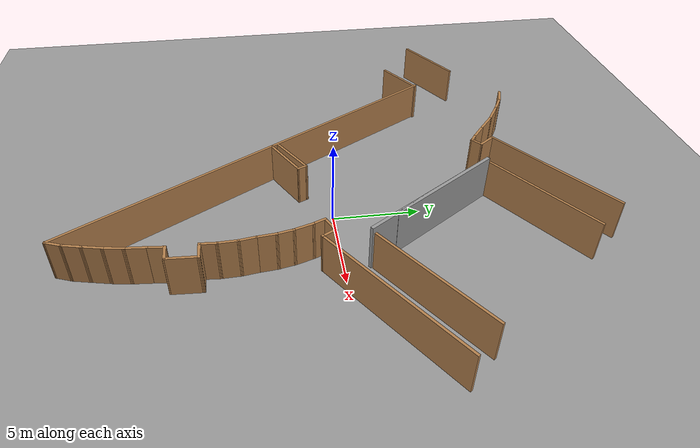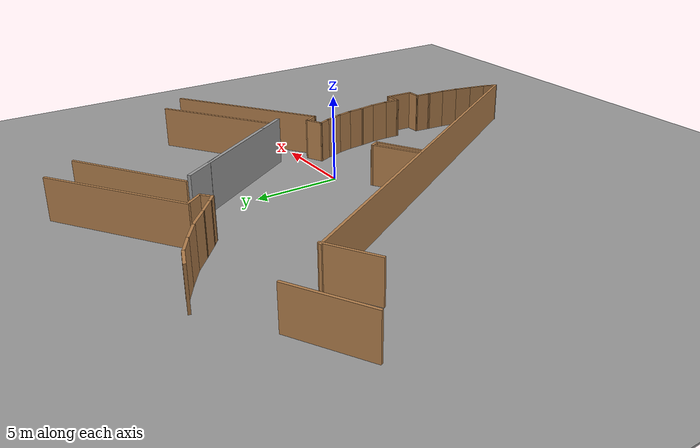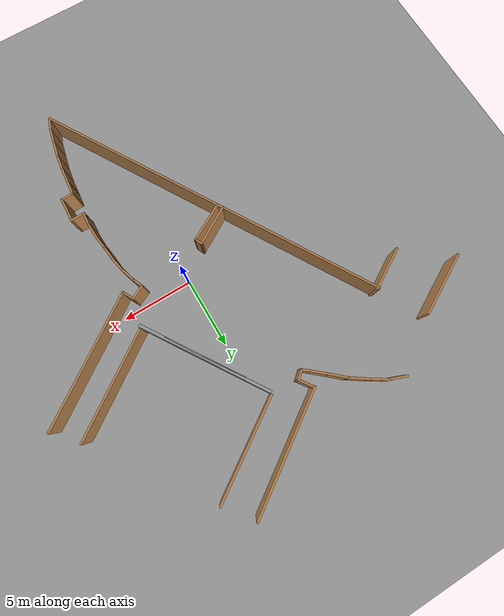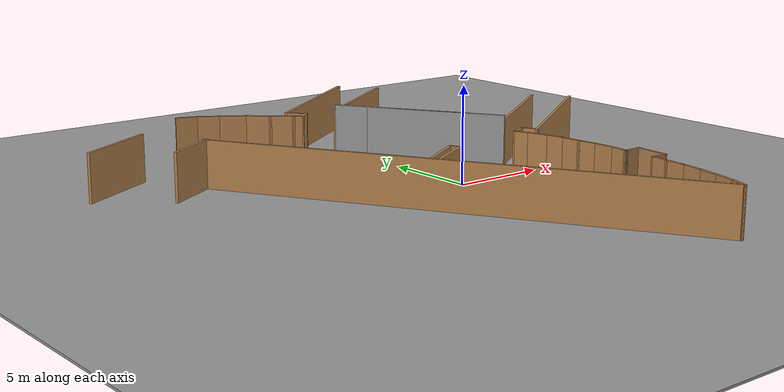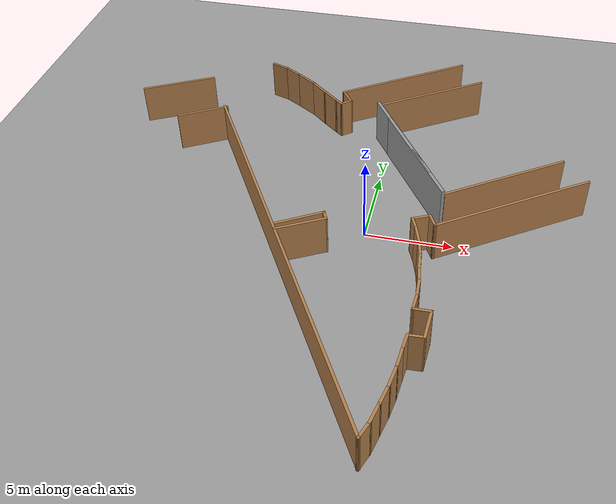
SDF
<sdf version="1.6">
 <world name="default">
  <light name="sun" type="directional">
   <pose>0 0 10 0 -0 0</pose>
   <diffuse>0.8 0.8 0.8 1</diffuse>
   <specular>0.1 0.1 0.1 1</specular>
   <attenuation>
    <range>1000</range>
    <constant>0.9</constant>
    <linear>0.01</linear>
    <quadratic>0.001</quadratic>
   </attenuation>
   <direction>-0.5 0.5 -1</direction>
  </light>
  <model name="ground_plane">
   <static>1</static>
   <link name="link">
    <collision name="collision">
     <geometry><plane><normal>0 0 1</normal><size>100 100</size></plane></geometry>
     <surface><friction><ode><mu>100</mu><mu2>50</mu2></ode></friction></surface>
    </collision>
    <visual name="visual">
     <cast_shadows>0</cast_shadows>
     <geometry><plane><normal>0 0 1</normal><size>100 100</size></plane></geometry>
     <material>
      <script><uri>file://media/materials/scripts/gazebo.material</uri><name>Gazebo/Grey</name></script>
     </material>
    </visual>
   </link>
  </model>
  <gravity>0 0 -9.8</gravity>
  <magnetic_field>6e-06 2.3e-05 -4.2e-05</magnetic_field>
  <atmosphere type="adiabatic"/>
  <physics name="default_physics" default="0" type="ode">
   <max_step_size>0.001</max_step_size>
   <real_time_factor>1</real_time_factor>
   <real_time_update_rate>1000</real_time_update_rate>
  </physics>
  <scene><ambient>0.4 0.4 0.4 1</ambient><background>0.7 0.7 0.7 1</background><shadows>1</shadows></scene>
  <spherical_coordinates>
   <surface_model>EARTH_WGS84</surface_model>
   <latitude_deg>0</latitude_deg>
   <longitude_deg>0</longitude_deg>
   <elevation>0</elevation>
   <heading_deg>0</heading_deg>
  </spherical_coordinates>
  <model name="lobby">
   <pose>-2.05254 0.166567 0 0 -0 0</pose>
   <link name="Wall_0">
    <collision name="Wall_0_Collision">
     <geometry><box><size>25.6992 0.15 2.5</size></box></geometry>
     <pose>0 0 1.25 0 -0 0</pose>
    </collision>
    <visual name="Wall_0_Visual">
     <pose>0 0 1.25 0 -0 0</pose>
     <geometry><box><size>25.6992 0.15 2.5</size></box></geometry>
     <material>
      <script><uri>file://media/materials/scripts/gazebo.material</uri><name>Gazebo/Wood</name></script>
      <ambient>0.309804 0.309804 0.309804 1</ambient>
     </material>
    </visual>
    <pose>-1.82314 -3.91274 0 0 0 -1.03666</pose>
   </link>
   <link name="Wall_10">
    <collision name="Wall_10_Collision">
     <geometry><box><size>1.05209 0.15 2.5</size></box></geometry>
     <pose>0 0 1.25 0 -0 0</pose>
    </collision>
    <visual name="Wall_10_Visual">
     <pose>0 0 1.25 0 -0 0</pose>
     <geometry><box><size>1.05209 0.15 2.5</size></box></geometry>
     <material>
      <script><uri>file://media/materials/scripts/gazebo.material</uri><name>Gazebo/Wood</name></script>
      <ambient>1 1 1 1</ambient>
     </material>
    </visual>
    <pose>6.25907 -7.36735 0 0 -0 3.14159</pose>
   </link>
   <link name="Wall_11">
    <collision name="Wall_11_Collision">
     <geometry><box><size>1.00886 0.15 2.5</size></box></geometry>
     <pose>0 0 1.25 0 -0 0</pose>
    </collision>
    <visual name="Wall_11_Visual">
     <pose>0 0 1.25 0 -0 0</pose>
     <geometry><box><size>1.00886 0.15 2.5</size></box></geometry>
     <material>
      <script><uri>file://media/materials/scripts/gazebo.material</uri><name>Gazebo/Wood</name></script>
      <ambient>1 1 1 1</ambient>
     </material>
    </visual>
    <pose>5.83894 -6.93903 0 0 -0 1.49873</pose>
   </link>
   <link name="Wall_12">
    <collision name="Wall_12_Collision">
     <geometry><box><size>1.20804 0.15 2.5</size></box></geometry>
     <pose>0 0 1.25 0 -0 0</pose>
    </collision>
    <visual name="Wall_12_Visual">
     <pose>0 0 1.25 0 -0 0</pose>
     <geometry><box><size>1.20804 0.15 2.5</size></box></geometry>
     <material>
      <script><uri>file://media/materials/scripts/gazebo.material</uri><name>Gazebo/Wood</name></script>
      <ambient>1 1 1 1</ambient>
     </material>
    </visual>
    <pose>5.85117 -5.98203 0 0 -0 1.60614</pose>
   </link>
   <link name="Wall_13">
    <collision name="Wall_13_Collision">
     <geometry><box><size>1.09089 0.15 2.5</size></box></geometry>
     <pose>0 0 1.25 0 -0 0</pose>
    </collision>
    <visual name="Wall_13_Visual">
     <pose>0 0 1.25 0 -0 0</pose>
     <geometry><box><size>1.09089 0.15 2.5</size></box></geometry>
     <material>
      <script><uri>file://media/materials/scripts/gazebo.material</uri><name>Gazebo/Wood</name></script>
      <ambient>1 1 1 1</ambient>
     </material>
    </visual>
    <pose>5.76269 -4.9881 0 0 -0 1.71969</pose>
   </link>
   <link name="Wall_14">
    <collision name="Wall_14_Collision">
     <geometry><box><size>1.13142 0.15 2.5</size></box></geometry>
     <pose>0 0 1.25 0 -0 0</pose>
    </collision>
    <visual name="Wall_14_Visual">
     <pose>0 0 1.25 0 -0 0</pose>
     <geometry><box><size>1.13142 0.15 2.5</size></box></geometry>
     <material>
      <script><uri>file://media/materials/scripts/gazebo.material</uri><name>Gazebo/Wood</name></script>
      <ambient>1 1 1 1</ambient>
     </material>
    </visual>
    <pose>5.64638 -4.03436 0 0 -0 1.66575</pose>
   </link>
   <link name="Wall_15">
    <collision name="Wall_15_Collision">
     <geometry><box><size>1.05333 0.15 2.5</size></box></geometry>
     <pose>0 0 1.25 0 -0 0</pose>
    </collision>
    <visual name="Wall_15_Visual">
     <pose>0 0 1.25 0 -0 0</pose>
     <geometry><box><size>1.05333 0.15 2.5</size></box></geometry>
     <material>
      <script><uri>file://media/materials/scripts/gazebo.material</uri><name>Gazebo/Wood</name></script>
      <ambient>1 1 1 1</ambient>
     </material>
    </visual>
    <pose>5.50681 -3.10388 0 0 -0 1.77829</pose>
   </link>
   <link name="Wall_16">
    <collision name="Wall_16_Collision">
     <geometry><box><size>1.22409 0.15 2.5</size></box></geometry>
     <pose>0 0 1.25 0 -0 0</pose>
    </collision>
    <visual name="Wall_16_Visual">
     <pose>0 0 1.25 0 -0 0</pose>
     <geometry><box><size>1.22409 0.15 2.5</size></box></geometry>
     <material>
      <script><uri>file://media/materials/scripts/gazebo.material</uri><name>Gazebo/Wood</name></script>
      <ambient>1 1 1 1</ambient>
     </material>
    </visual>
    <pose>5.25093 -2.15014 0 0 -0 1.87885</pose>
   </link>
   <link name="Wall_17">
    <collision name="Wall_17_Collision">
     <geometry><box><size>0.858631 0.15 2.5</size></box></geometry>
     <pose>0 0 1.25 0 -0 0</pose>
    </collision>
    <visual name="Wall_17_Visual">
     <pose>0 0 1.25 0 -0 0</pose>
     <geometry><box><size>0.858631 0.15 2.5</size></box></geometry>
     <material>
      <script><uri>file://media/materials/scripts/gazebo.material</uri><name>Gazebo/Wood</name></script>
      <ambient>1 1 1 1</ambient>
     </material>
    </visual>
    <pose>4.94852 -1.31271 0 0 -0 1.97569</pose>
   </link>
   <link name="Wall_18">
    <collision name="Wall_18_Collision">
     <geometry><box><size>1.12811 0.15 2.5</size></box></geometry>
     <pose>0 0 1.25 0 -0 0</pose>
    </collision>
    <visual name="Wall_18_Visual">
     <pose>0 0 1.25 0 -0 0</pose>
     <geometry><box><size>1.12811 0.15 2.5</size></box></geometry>
     <material>
      <script><uri>file://media/materials/scripts/gazebo.material</uri><name>Gazebo/Wood</name></script>
      <ambient>1 1 1 1</ambient>
     </material>
    </visual>
    <pose>5.25093 -0.777689 0 0 -0 0.442374</pose>
   </link>
   <link name="Wall_19">
    <collision name="Wall_19_Collision">
     <geometry><box><size>0.940907 0.15 2.5</size></box></geometry>
     <pose>0 0 1.25 0 -0 0</pose>
    </collision>
    <visual name="Wall_19_Visual">
     <pose>0 0 1.25 0 -0 0</pose>
     <geometry><box><size>0.940907 0.15 2.5</size></box></geometry>
     <material>
      <script><uri>file://media/materials/scripts/gazebo.material</uri><name>Gazebo/Wood</name></script>
      <ambient>1 1 1 1</ambient>
     </material>
    </visual>
    <pose>5.879 -0.91726 0 0 0 -1.08084</pose>
   </link>
   <link name="Wall_2">
    <collision name="Wall_2_Collision">
     <geometry><box><size>1.04138 0.15 2.5</size></box></geometry>
     <pose>0 0 1.25 0 -0 0</pose>
    </collision>
    <visual name="Wall_2_Visual">
     <pose>0 0 1.25 0 -0 0</pose>
     <geometry><box><size>1.04138 0.15 2.5</size></box></geometry>
     <material>
      <script><uri>file://media/materials/scripts/gazebo.material</uri><name>Gazebo/Wood</name></script>
      <ambient>1 1 1 1</ambient>
     </material>
    </visual>
    <pose>4.83943 -14.4916 0 0 -0 1.20596</pose>
   </link>
   <link name="Wall_21">
    <collision name="Wall_21_Collision">
     <geometry><box><size>9.71451 0.15 2.5</size></box></geometry>
     <pose>0 0 1.25 0 -0 0</pose>
    </collision>
    <visual name="Wall_21_Visual">
     <pose>0 0 1.25 0 -0 0</pose>
     <geometry><box><size>9.71451 0.15 2.5</size></box></geometry>
     <material>
      <script><uri>file://media/materials/scripts/gazebo.material</uri><name>Gazebo/Wood</name></script>
      <ambient>1 1 1 1</ambient>
     </material>
    </visual>
    <pose>10.0317 1.4051 0 0 -0 0.592678</pose>
   </link>
   <link name="Wall_23">
    <collision name="Wall_23_Collision">
     <geometry><box><size>7.7244 0.15 2.5</size></box></geometry>
     <pose>0 0 1.25 0 -0 0</pose>
    </collision>
    <visual name="Wall_23_Visual">
     <pose>0 0 1.25 0 -0 0</pose>
     <geometry><box><size>7.7244 0.15 2.5</size></box></geometry>
     <material>
      <script><uri>file://media/materials/scripts/gazebo.material</uri><name>Gazebo/Wood</name></script>
      <ambient>1 1 1 1</ambient>
     </material>
    </visual>
    <pose>9.41575 3.54137 0 0 -0 0.593113</pose>
   </link>
   <link name="Wall_25">
    <collision name="Wall_25_Collision">
     <geometry><box><size>1.22723 0.15 2.5</size></box></geometry>
     <pose>0 0 1.25 0 -0 0</pose>
    </collision>
    <visual name="Wall_25_Visual">
     <pose>0 0 1.25 0 -0 0</pose>
     <geometry><box><size>1.22723 0.15 2.5</size></box></geometry>
     <material>
      <script><uri>file://media/materials/scripts/gazebo.material</uri><name>Gazebo/Wood</name></script>
      <ambient>1 1 1 1</ambient>
     </material>
    </visual>
    <pose>-6.13059 12.387 0 0 0 -0.35299</pose>
   </link>
   <link name="Wall_26">
    <collision name="Wall_26_Collision">
     <geometry><box><size>1.30886 0.15 2.5</size></box></geometry>
     <pose>0 0 1.25 0 -0 0</pose>
    </collision>
    <visual name="Wall_26_Visual">
     <pose>0 0 1.25 0 -0 0</pose>
     <geometry><box><size>1.30886 0.15 2.5</size></box></geometry>
     <material>
      <script><uri>file://media/materials/scripts/gazebo.material</uri><name>Gazebo/Wood</name></script>
      <ambient>1 1 1 1</ambient>
     </material>
    </visual>
    <pose>-5.13308 11.8949 0 0 0 -0.556166</pose>
   </link>
   <link name="Wall_27">
    <collision name="Wall_27_Collision">
     <geometry><box><size>1.56657 0.15 2.5</size></box></geometry>
     <pose>0 0 1.25 0 -0 0</pose>
    </collision>
    <visual name="Wall_27_Visual">
     <pose>0 0 1.25 0 -0 0</pose>
     <geometry><box><size>1.56657 0.15 2.5</size></box></geometry>
     <material>
      <script><uri>file://media/materials/scripts/gazebo.material</uri><name>Gazebo/Wood</name></script>
      <ambient>1 1 1 1</ambient>
     </material>
    </visual>
    <pose>-4.05577 11.19 0 0 0 -0.598419</pose>
   </link>
   <link name="Wall_28">
    <collision name="Wall_28_Collision">
     <geometry><box><size>1.43124 0.15 2.5</size></box></geometry>
     <pose>0 0 1.25 0 -0 0</pose>
    </collision>
    <visual name="Wall_28_Visual">
     <pose>0 0 1.25 0 -0 0</pose>
     <geometry><box><size>1.43124 0.15 2.5</size></box></geometry>
     <material>
      <script><uri>file://media/materials/scripts/gazebo.material</uri><name>Gazebo/Wood</name></script>
      <ambient>1 1 1 1</ambient>
     </material>
    </visual>
    <pose>-2.99177 10.3654 0 0 0 -0.726642</pose>
   </link>
   <link name="Wall_29">
    <collision name="Wall_29_Collision">
     <geometry><box><size>1.37621 0.15 2.5</size></box></geometry>
     <pose>0 0 1.25 0 -0 0</pose>
    </collision>
    <visual name="Wall_29_Visual">
     <pose>0 0 1.25 0 -0 0</pose>
     <geometry><box><size>1.37621 0.15 2.5</size></box></geometry>
     <material>
      <script><uri>file://media/materials/scripts/gazebo.material</uri><name>Gazebo/Wood</name></script>
      <ambient>1 1 1 1</ambient>
     </material>
    </visual>
    <pose>-2.04746 9.54081 0 0 0 -0.708626</pose>
   </link>
   <link name="Wall_3">
    <collision name="Wall_3_Collision">
     <geometry><box><size>1.17116 0.15 2.5</size></box></geometry>
     <pose>0 0 1.25 0 -0 0</pose>
    </collision>
    <visual name="Wall_3_Visual">
     <pose>0 0 1.25 0 -0 0</pose>
     <geometry><box><size>1.17116 0.15 2.5</size></box></geometry>
     <material>
      <script><uri>file://media/materials/scripts/gazebo.material</uri><name>Gazebo/Wood</name></script>
      <ambient>1 1 1 1</ambient>
     </material>
    </visual>
    <pose>5.1141 -13.5779 0 0 -0 1.3423</pose>
   </link>
   <link name="Wall_30">
    <collision name="Wall_30_Collision">
     <geometry><box><size>0.623603 0.15 2.5</size></box></geometry>
     <pose>0 0 1.25 0 -0 0</pose>
    </collision>
    <visual name="Wall_30_Visual">
     <pose>0 0 1.25 0 -0 0</pose>
     <geometry><box><size>0.623603 0.15 2.5</size></box></geometry>
     <material>
      <script><uri>file://media/materials/scripts/gazebo.material</uri><name>Gazebo/Wood</name></script>
      <ambient>1 1 1 1</ambient>
     </material>
    </visual>
    <pose>-1.39576 8.9955 0 0 0 -0.665969</pose>
   </link>
   <link name="Wall_31">
    <collision name="Wall_31_Collision">
     <geometry><box><size>0.810735 0.15 2.5</size></box></geometry>
     <pose>0 0 1.25 0 -0 0</pose>
    </collision>
    <visual name="Wall_31_Visual">
     <pose>0 0 1.25 0 -0 0</pose>
     <geometry><box><size>0.810735 0.15 2.5</size></box></geometry>
     <material>
      <script><uri>file://media/materials/scripts/gazebo.material</uri><name>Gazebo/Wood</name></script>
      <ambient>1 1 1 1</ambient>
     </material>
    </visual>
    <pose>-0.956852 9.062 0 0 -0 0.699893</pose>
   </link>
   <link name="Wall_32">
    <collision name="Wall_32_Collision">
     <geometry><box><size>1.12409 0.15 2.5</size></box></geometry>
     <pose>0 0 1.25 0 -0 0</pose>
    </collision>
    <visual name="Wall_32_Visual">
     <pose>0 0 1.25 0 -0 0</pose>
     <geometry><box><size>1.12409 0.15 2.5</size></box></geometry>
     <material>
      <script><uri>file://media/materials/scripts/gazebo.material</uri><name>Gazebo/Wood</name></script>
      <ambient>1 1 1 1</ambient>
     </material>
    </visual>
    <pose>-0.983452 9.6738 0 0 -0 2.18152</pose>
   </link>
   <link name="Wall_34">
    <collision name="Wall_34_Collision">
     <geometry><box><size>7.20846 0.15 2.5</size></box></geometry>
     <pose>0 0 1.25 0 -0 0</pose>
    </collision>
    <visual name="Wall_34_Visual">
     <pose>0 0 1.25 0 -0 0</pose>
     <geometry><box><size>7.20846 0.15 2.5</size></box></geometry>
     <material>
      <script><uri>file://media/materials/scripts/gazebo.material</uri><name>Gazebo/Wood</name></script>
      <ambient>1 1 1 1</ambient>
     </material>
    </visual>
    <pose>4.16693 11.1149 0 0 -0 0.578862</pose>
   </link>
   <link name="Wall_36">
    <collision name="Wall_36_Collision">
     <geometry><box><size>8.6277 0.15 2.5</size></box></geometry>
     <pose>0 0 1.25 0 -0 0</pose>
    </collision>
    <visual name="Wall_36_Visual">
     <pose>0 0 1.25 0 -0 0</pose>
     <geometry><box><size>8.6277 0.15 2.5</size></box></geometry>
     <material>
      <script><uri>file://media/materials/scripts/gazebo.material</uri><name>Gazebo/Wood</name></script>
      <ambient>1 1 1 1</ambient>
     </material>
    </visual>
    <pose>2.16641 12.5338 0 0 -0 0.594091</pose>
   </link>
   <link name="Wall_38">
    <collision name="Wall_38_Collision">
     <geometry><box><size>3.17405 0.15 2.5</size></box></geometry>
     <pose>0 0 1.25 0 -0 0</pose>
    </collision>
    <visual name="Wall_38_Visual">
     <pose>0 0 1.25 0 -0 0</pose>
     <geometry><box><size>3.17405 0.15 2.5</size></box></geometry>
     <material>
      <script><uri>file://media/materials/scripts/gazebo.material</uri><name>Gazebo/Wood</name></script>
      <ambient>1 1 1 1</ambient>
     </material>
    </visual>
    <pose>-9.48783 6.27636 0 0 0 -2.60909</pose>
   </link>
   <link name="Wall_4">
    <collision name="Wall_4_Collision">
     <geometry><box><size>1.21627 0.15 2.5</size></box></geometry>
     <pose>0 0 1.25 0 -0 0</pose>
    </collision>
    <visual name="Wall_4_Visual">
     <pose>0 0 1.25 0 -0 0</pose>
     <geometry><box><size>1.21627 0.15 2.5</size></box></geometry>
     <material>
      <script><uri>file://media/materials/scripts/gazebo.material</uri><name>Gazebo/Wood</name></script>
      <ambient>1 1 1 1</ambient>
     </material>
    </visual>
    <pose>5.34541 -12.5602 0 0 -0 1.35213</pose>
   </link>
   <link name="Wall_42">
    <collision name="Wall_42_Collision">
     <geometry><box><size>4.60562 0.15 2.5</size></box></geometry>
     <pose>0 0 1.25 0 -0 0</pose>
    </collision>
    <visual name="Wall_42_Visual">
     <pose>0 0 1.25 0 -0 0</pose>
     <geometry><box><size>4.60562 0.15 2.5</size></box></geometry>
     <material>
      <script><uri>file://media/materials/scripts/gazebo.material</uri><name>Gazebo/Wood</name></script>
      <ambient>0.309804 0.309804 0.309804 1</ambient>
     </material>
    </visual>
    <pose>-12.0466 8.99801 0 0 0 -2.64058</pose>
   </link>
   <link name="Wall_46">
    <collision name="Wall_46_Collision">
     <geometry><box><size>2.95986 0.15 2.5</size></box></geometry>
     <pose>0 0 1.25 0 -0 0</pose>
    </collision>
    <visual name="Wall_46_Visual">
     <pose>0 0 1.25 0 -0 0</pose>
     <geometry><box><size>2.95986 0.15 2.5</size></box></geometry>
     <material>
      <script><uri>file://media/materials/scripts/gazebo.material</uri><name>Gazebo/Wood</name></script>
      <ambient>1 1 1 1</ambient>
     </material>
    </visual>
    <pose>-0.958945 -2.59343 0 0 -0 0.499843</pose>
   </link>
   <link name="Wall_47">
    <collision name="Wall_47_Collision">
     <geometry><box><size>0.650839 0.15 2.5</size></box></geometry>
     <pose>0 0 1.25 0 -0 0</pose>
    </collision>
    <visual name="Wall_47_Visual">
     <pose>0 0 1.25 0 -0 0</pose>
     <geometry><box><size>0.650839 0.15 2.5</size></box></geometry>
     <material>
      <script><uri>file://media/materials/scripts/gazebo.material</uri><name>Gazebo/Wood</name></script>
      <ambient>1 1 1 1</ambient>
     </material>
    </visual>
    <pose>0.169164 -1.69269 0 0 -0 2.0032</pose>
   </link>
   <link name="Wall_48">
    <collision name="Wall_48_Collision">
     <geometry><box><size>2.97263 0.15 2.5</size></box></geometry>
     <pose>0 0 1.25 0 -0 0</pose>
    </collision>
    <visual name="Wall_48_Visual">
     <pose>0 0 1.25 0 -0 0</pose>
     <geometry><box><size>2.97263 0.15 2.5</size></box></geometry>
     <material>
      <script><uri>file://media/materials/scripts/gazebo.material</uri><name>Gazebo/Wood</name></script>
      <ambient>1 1 1 1</ambient>
     </material>
    </visual>
    <pose>-1.15134 -2.18241 0 0 0 -2.60861</pose>
   </link>
   <link name="Wall_5">
    <collision name="Wall_5_Collision">
     <geometry><box><size>1.20339 0.15 2.5</size></box></geometry>
     <pose>0 0 1.25 0 -0 0</pose>
    </collision>
    <visual name="Wall_5_Visual">
     <pose>0 0 1.25 0 -0 0</pose>
     <geometry><box><size>1.20339 0.15 2.5</size></box></geometry>
     <material>
      <script><uri>file://media/materials/scripts/gazebo.material</uri><name>Gazebo/Wood</name></script>
      <ambient>1 1 1 1</ambient>
     </material>
    </visual>
    <pose>5.54202 -11.5193 0 0 -0 1.41648</pose>
   </link>
   <link name="Wall_6">
    <collision name="Wall_6_Collision">
     <geometry><box><size>1.24107 0.15 2.5</size></box></geometry>
     <pose>0 0 1.25 0 -0 0</pose>
    </collision>
    <visual name="Wall_6_Visual">
     <pose>0 0 1.25 0 -0 0</pose>
     <geometry><box><size>1.24107 0.15 2.5</size></box></geometry>
     <material>
      <script><uri>file://media/materials/scripts/gazebo.material</uri><name>Gazebo/Wood</name></script>
      <ambient>1 1 1 1</ambient>
     </material>
    </visual>
    <pose>5.66924 -10.4553 0 0 -0 1.48589</pose>
   </link>
   <link name="Wall_7">
    <collision name="Wall_7_Collision">
     <geometry><box><size>1.03382 0.15 2.5</size></box></geometry>
     <pose>0 0 1.25 0 -0 0</pose>
    </collision>
    <visual name="Wall_7_Visual">
     <pose>0 0 1.25 0 -0 0</pose>
     <geometry><box><size>1.03382 0.15 2.5</size></box></geometry>
     <material>
      <script><uri>file://media/materials/scripts/gazebo.material</uri><name>Gazebo/Wood</name></script>
      <ambient>1 1 1 1</ambient>
     </material>
    </visual>
    <pose>5.76176 -9.47224 0 0 -0 1.46592</pose>
   </link>
   <link name="Wall_8">
    <collision name="Wall_8_Collision">
     <geometry><box><size>0.959902 0.15 2.5</size></box></geometry>
     <pose>0 0 1.25 0 -0 0</pose>
    </collision>
    <visual name="Wall_8_Visual">
     <pose>0 0 1.25 0 -0 0</pose>
     <geometry><box><size>0.959902 0.15 2.5</size></box></geometry>
     <material>
      <script><uri>file://media/materials/scripts/gazebo.material</uri><name>Gazebo/Wood</name></script>
      <ambient>1 1 1 1</ambient>
     </material>
    </visual>
    <pose>6.21281 -9.02119 0 0 -0 0.028564</pose>
   </link>
   <link name="Wall_9">
    <collision name="Wall_9_Collision">
     <geometry><box><size>1.79488 0.15 2.5</size></box></geometry>
     <pose>0 0 1.25 0 -0 0</pose>
    </collision>
    <visual name="Wall_9_Visual">
     <pose>0 0 1.25 0 -0 0</pose>
     <geometry><box><size>1.79488 0.15 2.5</size></box></geometry>
     <material>
      <script><uri>file://media/materials/scripts/gazebo.material</uri><name>Gazebo/Wood</name></script>
      <ambient>1 1 1 1</ambient>
     </material>
    </visual>
    <pose>6.66385 -8.18849 0 0 -0 1.51452</pose>
   </link>
   <static>1</static>
  </model>
  <model name="grey_wall">
   <static>1</static>
   <link name="link">
    <pose>0 0 1.4 0 -0 0</pose>
    <collision name="collision"><geometry><box><size>7.5 0.2 2.8</size></box></geometry></collision>
    <visual name="visual">
     <cast_shadows>0</cast_shadows>
     <geometry><box><size>7.5 0.2 2.8</size></box></geometry>
     <material>
      <script>
       <uri>model://grey_wall/materials/scripts</uri>
       <uri>model://grey_wall/materials/textures</uri>
       <name>vrc/grey_wall</name>
      </script>
     </material>
    </visual>
   </link>
   <pose>1.10108 6.0424 0 0 0 -0.997866</pose>
  </model>
  <model name="grey_wall_clone">
   <static>1</static>
   <link name="link">
    <pose>0 0 1.4 0 -0 0</pose>
    <collision name="collision"><geometry><box><size>7.5 0.2 2.8</size></box></geometry></collision>
    <visual name="visual">
     <cast_shadows>0</cast_shadows>
     <geometry><box><size>7.5 0.2 2.8</size></box></geometry>
     <material>
      <script>
       <uri>model://grey_wall/materials/scripts</uri>
       <uri>model://grey_wall/materials/textures</uri>
       <name>vrc/grey_wall</name>
      </script>
     </material>
    </visual>
   </link>
   <pose>2.07958 4.50462 0 0 0 -0.997996</pose>
  </model>
  <model name="ground_plane_0">
   <static>1</static>
   <link name="link">
    <collision name="collision">
     <geometry><plane><normal>0 0 1</normal><size>100 100</size></plane></geometry>
     <surface><friction><ode><mu>100</mu><mu2>50</mu2></ode></friction></surface>
    </collision>
    <visual name="visual">
     <cast_shadows>0</cast_shadows>
     <geometry><plane><normal>0 0 1</normal><size>100 100</size></plane></geometry>
     <material>
      <script><uri>file://media/materials/scripts/gazebo.material</uri><name>Gazebo/Grey</name></script>
     </material>
    </visual>
   </link>
   <pose>2.82631 -3.77568 0 0 -0 0</pose>
  </model>
 </world>
</sdf>
